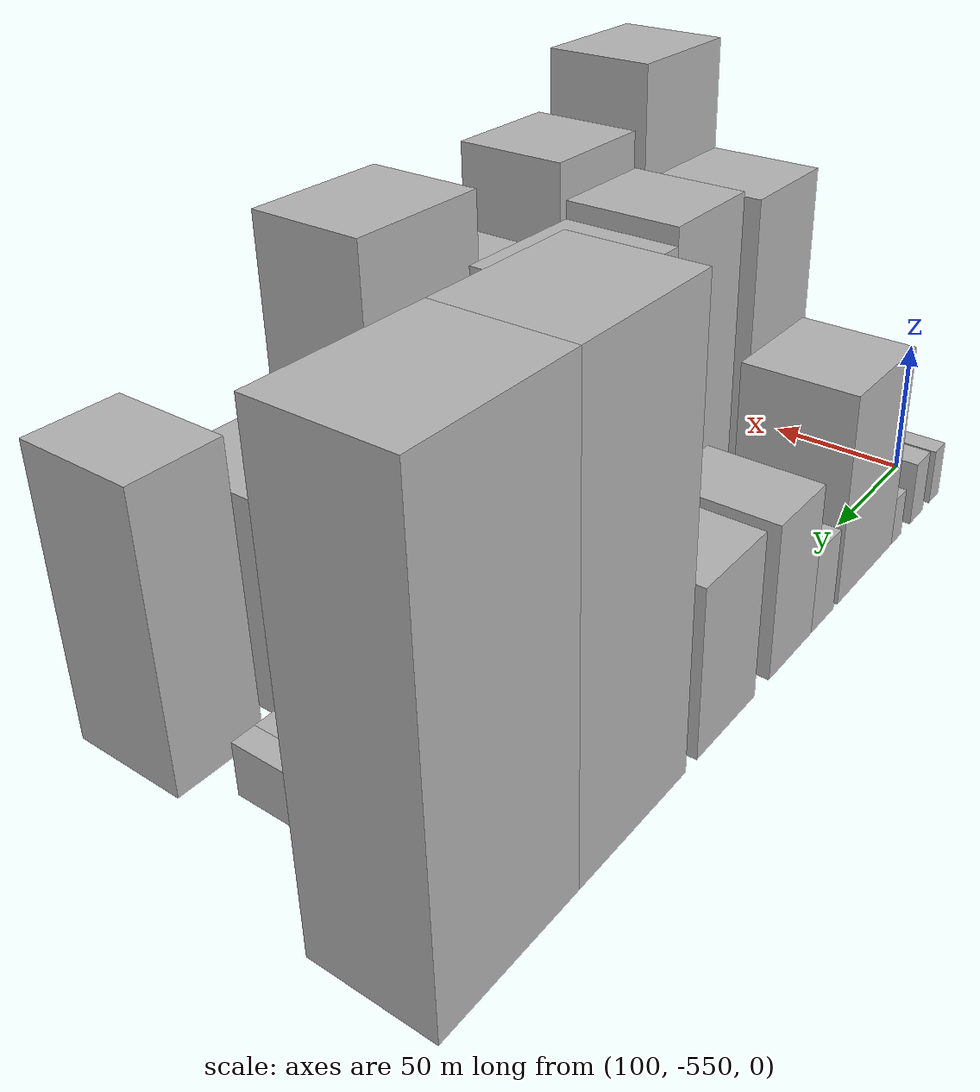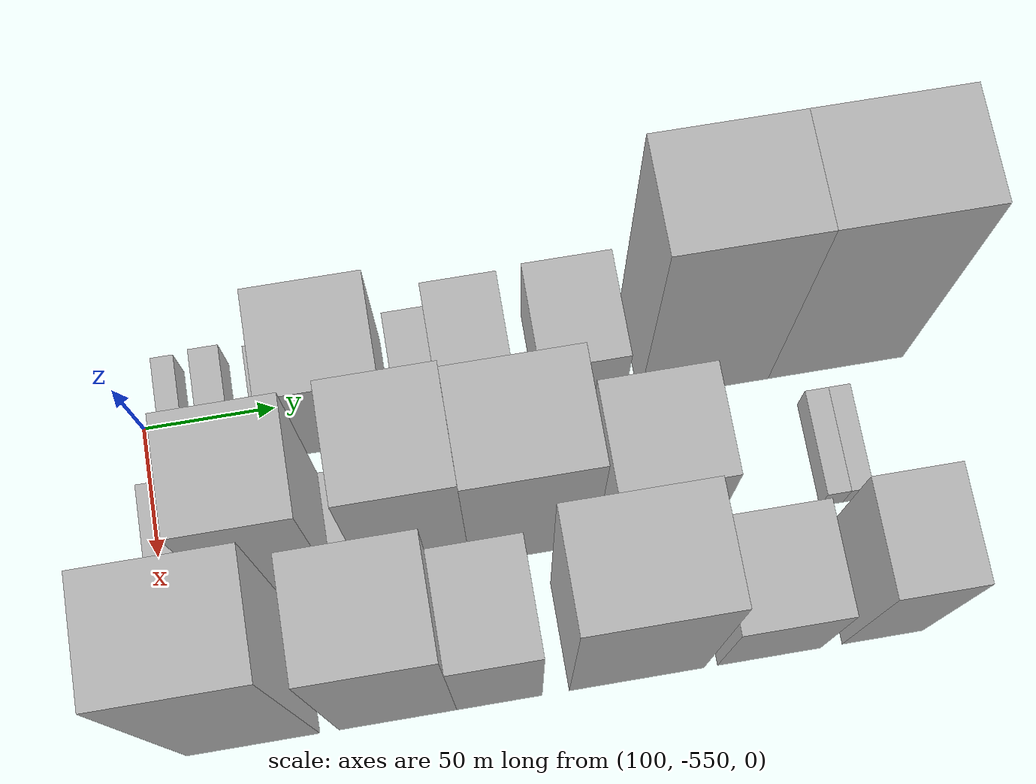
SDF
<sdf version="1.6">
 <world name="default">
  <model name="building_1">
   <static>1</static>
   <pose>100.0000 -536.7540 0 0.000000 0.000000 0.000000</pose>
   <link name="link">
    <pose>0 0 10.50 0 0 0</pose>
    <collision name="collision"><geometry><box><size>40.0000 8.4920 21.0000</size></box></geometry></collision>
    <visual name="visual">
     <cast_shadows>0</cast_shadows>
     <geometry><box><size>40.0000 8.4920 21.0000</size></box></geometry>
     <material>
      <script>
       <uri>model://HANNAS_wall/materials/scripts</uri>
       <uri>model://HANNAS_wall/materials/textures</uri>
       <name>vrc/HANNAS_wall</name>
      </script>
     </material>
    </visual>
   </link>
  </model>
  <model name="building_2">
   <static>1</static>
   <pose>100.0000 -520.8953 0 0.000000 0.000000 0.000000</pose>
   <link name="link">
    <pose>0 0 12.00 0 0 0</pose>
    <collision name="collision"><geometry><box><size>40.0000 11.2253 24.0000</size></box></geometry></collision>
    <visual name="visual">
     <cast_shadows>0</cast_shadows>
     <geometry><box><size>40.0000 11.2253 24.0000</size></box></geometry>
     <material>
      <script>
       <uri>model://HANNAS_wall/materials/scripts</uri>
       <uri>model://HANNAS_wall/materials/textures</uri>
       <name>vrc/HANNAS_wall</name>
      </script>
     </material>
    </visual>
   </link>
  </model>
  <model name="building_3">
   <static>1</static>
   <pose>100.0000 -503.1927 0 0.000000 0.000000 0.000000</pose>
   <link name="link">
    <pose>0 0 9.00 0 0 0</pose>
    <collision name="collision"><geometry><box><size>40.0000 8.1800 18.0000</size></box></geometry></collision>
    <visual name="visual">
     <cast_shadows>0</cast_shadows>
     <geometry><box><size>40.0000 8.1800 18.0000</size></box></geometry>
     <material>
      <script>
       <uri>model://HANNAS_wall/materials/scripts</uri>
       <uri>model://HANNAS_wall/materials/textures</uri>
       <name>vrc/HANNAS_wall</name>
      </script>
     </material>
    </visual>
   </link>
  </model>
  <model name="building_4">
   <static>1</static>
   <pose>100.0000 -478.0541 0 0.000000 0.000000 0.000000</pose>
   <link name="link">
    <pose>0 0 37.50 0 0 0</pose>
    <collision name="collision"><geometry><box><size>40.0000 42.0971 75.0000</size></box></geometry></collision>
    <visual name="visual">
     <cast_shadows>0</cast_shadows>
     <geometry><box><size>40.0000 42.0971 75.0000</size></box></geometry>
     <material>
      <script>
       <uri>model://HANNAS_wall/materials/scripts</uri>
       <uri>model://HANNAS_wall/materials/textures</uri>
       <name>vrc/HANNAS_wall</name>
      </script>
     </material>
    </visual>
   </link>
  </model>
  <model name="building_5">
   <static>1</static>
   <pose>100.0000 -446.2082 0 0.000000 0.000000 0.000000</pose>
   <link name="link">
    <pose>0 0 15.00 0 0 0</pose>
    <collision name="collision"><geometry><box><size>40.0000 15.5946 30.0000</size></box></geometry></collision>
    <visual name="visual">
     <cast_shadows>0</cast_shadows>
     <geometry><box><size>40.0000 15.5946 30.0000</size></box></geometry>
     <material>
      <script>
       <uri>model://HANNAS_wall/materials/scripts</uri>
       <uri>model://HANNAS_wall/materials/textures</uri>
       <name>vrc/HANNAS_wall</name>
      </script>
     </material>
    </visual>
   </link>
  </model>
  <model name="building_6">
   <static>1</static>
   <pose>100.0000 -424.6408 0 0.000000 0.000000 0.000000</pose>
   <link name="link">
    <pose>0 0 27.00 0 0 0</pose>
    <collision name="collision"><geometry><box><size>40.0000 27.5401 54.0000</size></box></geometry></collision>
    <visual name="visual">
     <cast_shadows>0</cast_shadows>
     <geometry><box><size>40.0000 27.5401 54.0000</size></box></geometry>
     <material>
      <script>
       <uri>model://HANNAS_wall/materials/scripts</uri>
       <uri>model://HANNAS_wall/materials/textures</uri>
       <name>vrc/HANNAS_wall</name>
      </script>
     </material>
    </visual>
   </link>
  </model>
  <model name="building_7">
   <static>1</static>
   <pose>100.0000 -385.5654 0 0.000000 0.000000 0.000000</pose>
   <link name="link">
    <pose>0 0 28.50 0 0 0</pose>
    <collision name="collision"><geometry><box><size>40.0000 32.6109 57.0000</size></box></geometry></collision>
    <visual name="visual">
     <cast_shadows>0</cast_shadows>
     <geometry><box><size>40.0000 32.6109 57.0000</size></box></geometry>
     <material>
      <script>
       <uri>model://HANNAS_wall/materials/scripts</uri>
       <uri>model://HANNAS_wall/materials/textures</uri>
       <name>vrc/HANNAS_wall</name>
      </script>
     </material>
    </visual>
   </link>
  </model>
  <model name="building_8">
   <static>1</static>
   <pose>100.0000 -338.2267 0 0.000000 0.000000 0.000000</pose>
   <link name="link">
    <pose>0 0 73.50 0 0 0</pose>
    <collision name="collision"><geometry><box><size>40.0000 50.0665 147.0000</size></box></geometry></collision>
    <visual name="visual">
     <cast_shadows>0</cast_shadows>
     <geometry><box><size>40.0000 50.0665 147.0000</size></box></geometry>
     <material>
      <script>
       <uri>model://HANNAS_wall/materials/scripts</uri>
       <uri>model://HANNAS_wall/materials/textures</uri>
       <name>vrc/HANNAS_wall</name>
      </script>
     </material>
    </visual>
   </link>
  </model>
  <model name="building_9">
   <static>1</static>
   <pose>100.0000 -286.8688 0 0.000000 0.000000 0.000000</pose>
   <link name="link">
    <pose>0 0 73.50 0 0 0</pose>
    <collision name="collision"><geometry><box><size>40.0000 52.6494 147.0000</size></box></geometry></collision>
    <visual name="visual">
     <cast_shadows>0</cast_shadows>
     <geometry><box><size>40.0000 52.6494 147.0000</size></box></geometry>
     <material>
      <script>
       <uri>model://HANNAS_wall/materials/scripts</uri>
       <uri>model://HANNAS_wall/materials/textures</uri>
       <name>vrc/HANNAS_wall</name>
      </script>
     </material>
    </visual>
   </link>
  </model>
  <model name="building_36">
   <static>1</static>
   <pose>152.0000 -537.2542 0 0.000000 0.000000 0.000000</pose>
   <link name="link">
    <pose>0 0 19.50 0 0 0</pose>
    <collision name="collision"><geometry><box><size>40.0000 21.4917 39.0000</size></box></geometry></collision>
    <visual name="visual">
     <cast_shadows>0</cast_shadows>
     <geometry><box><size>40.0000 21.4917 39.0000</size></box></geometry>
     <material>
      <script>
       <uri>model://HANNAS_wall/materials/scripts</uri>
       <uri>model://HANNAS_wall/materials/textures</uri>
       <name>vrc/HANNAS_wall</name>
      </script>
     </material>
    </visual>
   </link>
  </model>
  <model name="building_37">
   <static>1</static>
   <pose>152.0000 -506.4666 0 0.000000 0.000000 0.000000</pose>
   <link name="link">
    <pose>0 0 58.50 0 0 0</pose>
    <collision name="collision"><geometry><box><size>40.0000 40.0835 117.0000</size></box></geometry></collision>
    <visual name="visual">
     <cast_shadows>0</cast_shadows>
     <geometry><box><size>40.0000 40.0835 117.0000</size></box></geometry>
     <material>
      <script>
       <uri>model://HANNAS_wall/materials/scripts</uri>
       <uri>model://HANNAS_wall/materials/textures</uri>
       <name>vrc/HANNAS_wall</name>
      </script>
     </material>
    </visual>
   </link>
  </model>
  <model name="building_38">
   <static>1</static>
   <pose>152.0000 -482.7148 0 0.000000 0.000000 0.000000</pose>
   <link name="link">
    <pose>0 0 7.50 0 0 0</pose>
    <collision name="collision"><geometry><box><size>40.0000 7.4202 15.0000</size></box></geometry></collision>
    <visual name="visual">
     <cast_shadows>0</cast_shadows>
     <geometry><box><size>40.0000 7.4202 15.0000</size></box></geometry>
     <material>
      <script>
       <uri>model://HANNAS_wall/materials/scripts</uri>
       <uri>model://HANNAS_wall/materials/textures</uri>
       <name>vrc/HANNAS_wall</name>
      </script>
     </material>
    </visual>
   </link>
  </model>
  <model name="building_39">
   <static>1</static>
   <pose>152.0000 -455.6832 0 0.000000 0.000000 0.000000</pose>
   <link name="link">
    <pose>0 0 61.50 0 0 0</pose>
    <collision name="collision"><geometry><box><size>40.0000 38.6430 123.0000</size></box></geometry></collision>
    <visual name="visual">
     <cast_shadows>0</cast_shadows>
     <geometry><box><size>40.0000 38.6430 123.0000</size></box></geometry>
     <material>
      <script>
       <uri>model://HANNAS_wall/materials/scripts</uri>
       <uri>model://HANNAS_wall/materials/textures</uri>
       <name>vrc/HANNAS_wall</name>
      </script>
     </material>
    </visual>
   </link>
  </model>
  <model name="building_40">
   <static>1</static>
   <pose>152.0000 -413.0229 0 0.000000 0.000000 0.000000</pose>
   <link name="link">
    <pose>0 0 58.50 0 0 0</pose>
    <collision name="collision"><geometry><box><size>40.0000 46.6776 117.0000</size></box></geometry></collision>
    <visual name="visual">
     <cast_shadows>0</cast_shadows>
     <geometry><box><size>40.0000 46.6776 117.0000</size></box></geometry>
     <material>
      <script>
       <uri>model://HANNAS_wall/materials/scripts</uri>
       <uri>model://HANNAS_wall/materials/textures</uri>
       <name>vrc/HANNAS_wall</name>
      </script>
     </material>
    </visual>
   </link>
  </model>
  <model name="building_41">
   <static>1</static>
   <pose>152.0000 -363.9254 0 0.000000 0.000000 0.000000</pose>
   <link name="link">
    <pose>0 0 37.50 0 0 0</pose>
    <collision name="collision"><geometry><box><size>40.0000 41.5174 75.0000</size></box></geometry></collision>
    <visual name="visual">
     <cast_shadows>0</cast_shadows>
     <geometry><box><size>40.0000 41.5174 75.0000</size></box></geometry>
     <material>
      <script>
       <uri>model://HANNAS_wall/materials/scripts</uri>
       <uri>model://HANNAS_wall/materials/textures</uri>
       <name>vrc/HANNAS_wall</name>
      </script>
     </material>
    </visual>
   </link>
  </model>
  <model name="building_42">
   <static>1</static>
   <pose>152.0000 -299.8466 0 0.000000 0.000000 0.000000</pose>
   <link name="link">
    <pose>0 0 9.00 0 0 0</pose>
    <collision name="collision"><geometry><box><size>40.0000 8.8800 18.0000</size></box></geometry></collision>
    <visual name="visual">
     <cast_shadows>0</cast_shadows>
     <geometry><box><size>40.0000 8.8800 18.0000</size></box></geometry>
     <material>
      <script>
       <uri>model://HANNAS_wall/materials/scripts</uri>
       <uri>model://HANNAS_wall/materials/textures</uri>
       <name>vrc/HANNAS_wall</name>
      </script>
     </material>
    </visual>
   </link>
  </model>
  <model name="building_43">
   <static>1</static>
   <pose>152.0000 -291.3068 0 0.000000 0.000000 0.000000</pose>
   <link name="link">
    <pose>0 0 9.00 0 0 0</pose>
    <collision name="collision"><geometry><box><size>40.0000 8.1996 18.0000</size></box></geometry></collision>
    <visual name="visual">
     <cast_shadows>0</cast_shadows>
     <geometry><box><size>40.0000 8.1996 18.0000</size></box></geometry>
     <material>
      <script>
       <uri>model://HANNAS_wall/materials/scripts</uri>
       <uri>model://HANNAS_wall/materials/textures</uri>
       <name>vrc/HANNAS_wall</name>
      </script>
     </material>
    </visual>
   </link>
  </model>
  <model name="building_70">
   <static>1</static>
   <pose>204.0000 -523.8769 0 0.000000 0.000000 0.000000</pose>
   <link name="link">
    <pose>0 0 75.00 0 0 0</pose>
    <collision name="collision"><geometry><box><size>40.0000 48.2462 150.0000</size></box></geometry></collision>
    <visual name="visual">
     <cast_shadows>0</cast_shadows>
     <geometry><box><size>40.0000 48.2462 150.0000</size></box></geometry>
     <material>
      <script>
       <uri>model://HANNAS_wall/materials/scripts</uri>
       <uri>model://HANNAS_wall/materials/textures</uri>
       <name>vrc/HANNAS_wall</name>
      </script>
     </material>
    </visual>
   </link>
  </model>
  <model name="building_71">
   <static>1</static>
   <pose>204.0000 -471.2453 0 0.000000 0.000000 0.000000</pose>
   <link name="link">
    <pose>0 0 64.50 0 0 0</pose>
    <collision name="collision"><geometry><box><size>40.0000 43.0169 129.0000</size></box></geometry></collision>
    <visual name="visual">
     <cast_shadows>0</cast_shadows>
     <geometry><box><size>40.0000 43.0169 129.0000</size></box></geometry>
     <material>
      <script>
       <uri>model://HANNAS_wall/materials/scripts</uri>
       <uri>model://HANNAS_wall/materials/textures</uri>
       <name>vrc/HANNAS_wall</name>
      </script>
     </material>
    </visual>
   </link>
  </model>
  <model name="building_72">
   <static>1</static>
   <pose>204.0000 -434.1034 0 0.000000 0.000000 0.000000</pose>
   <link name="link">
    <pose>0 0 49.50 0 0 0</pose>
    <collision name="collision"><geometry><box><size>40.0000 31.2668 99.0000</size></box></geometry></collision>
    <visual name="visual">
     <cast_shadows>0</cast_shadows>
     <geometry><box><size>40.0000 31.2668 99.0000</size></box></geometry>
     <material>
      <script>
       <uri>model://HANNAS_wall/materials/scripts</uri>
       <uri>model://HANNAS_wall/materials/textures</uri>
       <name>vrc/HANNAS_wall</name>
      </script>
     </material>
    </visual>
   </link>
  </model>
  <model name="building_73">
   <static>1</static>
   <pose>204.0000 -383.5374 0 0.000000 0.000000 0.000000</pose>
   <link name="link">
    <pose>0 0 66.00 0 0 0</pose>
    <collision name="collision"><geometry><box><size>40.0000 49.8651 132.0000</size></box></geometry></collision>
    <visual name="visual">
     <cast_shadows>0</cast_shadows>
     <geometry><box><size>40.0000 49.8651 132.0000</size></box></geometry>
     <material>
      <script>
       <uri>model://HANNAS_wall/materials/scripts</uri>
       <uri>model://HANNAS_wall/materials/textures</uri>
       <name>vrc/HANNAS_wall</name>
      </script>
     </material>
    </visual>
   </link>
  </model>
  <model name="building_74">
   <static>1</static>
   <pose>204.0000 -334.3912 0 0.000000 0.000000 0.000000</pose>
   <link name="link">
    <pose>0 0 36.00 0 0 0</pose>
    <collision name="collision"><geometry><box><size>40.0000 38.4274 72.0000</size></box></geometry></collision>
    <visual name="visual">
     <cast_shadows>0</cast_shadows>
     <geometry><box><size>40.0000 38.4274 72.0000</size></box></geometry>
     <material>
      <script>
       <uri>model://HANNAS_wall/materials/scripts</uri>
       <uri>model://HANNAS_wall/materials/textures</uri>
       <name>vrc/HANNAS_wall</name>
      </script>
     </material>
    </visual>
   </link>
  </model>
  <model name="building_75">
   <static>1</static>
   <pose>204.0000 -292.0791 0 0.000000 0.000000 0.000000</pose>
   <link name="link">
    <pose>0 0 48.00 0 0 0</pose>
    <collision name="collision"><geometry><box><size>40.0000 30.1969 96.0000</size></box></geometry></collision>
    <visual name="visual">
     <cast_shadows>0</cast_shadows>
     <geometry><box><size>40.0000 30.1969 96.0000</size></box></geometry>
     <material>
      <script>
       <uri>model://HANNAS_wall/materials/scripts</uri>
       <uri>model://HANNAS_wall/materials/textures</uri>
       <name>vrc/HANNAS_wall</name>
      </script>
     </material>
    </visual>
   </link>
  </model>
 </world>
</sdf>
